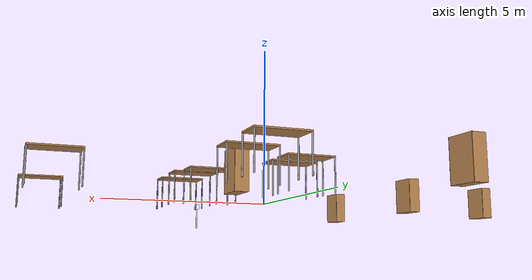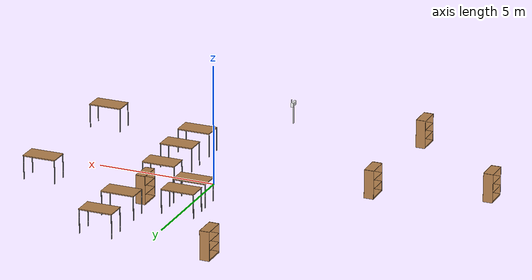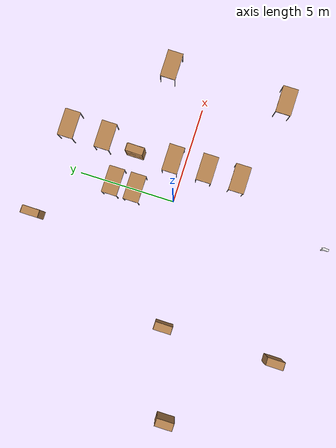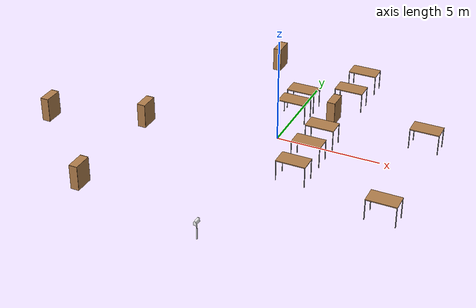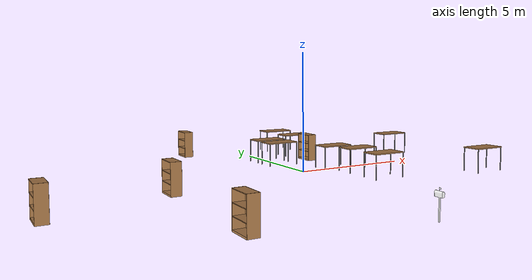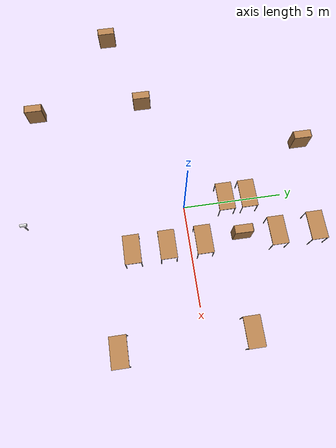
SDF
<?xml version='1.0'?>
<sdf version='1.6'>
  <model name='filled_pentagon'>
    <model name='Mailbox'>
      <link name='link'>
        <collision name='collision'>
          <geometry>
            <mesh>
              <uri>model://mailbox/meshes/mailbox.dae</uri>
            </mesh>
          </geometry>
        </collision>
        <visual name='visual'>
          <geometry>
            <mesh>
              <uri>model://mailbox/meshes/mailbox.dae</uri>
            </mesh>
          </geometry>
          <material>
            <script>
              <uri>model://mailbox/materials/scripts</uri>
              <uri>model://mailbox/materials/textures</uri>
              <name>Mailbox/Diffuse</name>
            </script>
          </material>
        </visual>
      </link>
      <pose frame=''>-0.061063 -8.05181 -0.319145 0 -0 0</pose>
    </model>
    <model name='bookshelf'>
      <static>1</static>
      <link name='link'>
        <inertial>
          <mass>1</mass>
        </inertial>
        <collision name='back'>
          <pose frame=''>0 0.005 0.6 0 -0 0</pose>
          <geometry>
            <box>
              <size>0.9 0.01 1.2</size>
            </box>
          </geometry>
        </collision>
        <visual name='visual1'>
          <pose frame=''>0 0.005 0.6 0 -0 0</pose>
          <geometry>
            <box>
              <size>0.9 0.01 1.2</size>
            </box>
          </geometry>
          <material>
            <script>
              <uri>file://media/materials/scripts/gazebo.material</uri>
              <name>Gazebo/Wood</name>
            </script>
          </material>
        </visual>
        <collision name='left_side'>
          <pose frame=''>0.45 -0.195 0.6 0 -0 0</pose>
          <geometry>
            <box>
              <size>0.02 0.4 1.2</size>
            </box>
          </geometry>
        </collision>
        <visual name='visual2'>
          <pose frame=''>0.45 -0.195 0.6 0 -0 0</pose>
          <geometry>
            <box>
              <size>0.02 0.4 1.2</size>
            </box>
          </geometry>
          <material>
            <script>
              <uri>file://media/materials/scripts/gazebo.material</uri>
              <name>Gazebo/Wood</name>
            </script>
          </material>
        </visual>
        <collision name='right_side'>
          <pose frame=''>-0.45 -0.195 0.6 0 -0 0</pose>
          <geometry>
            <box>
              <size>0.02 0.4 1.2</size>
            </box>
          </geometry>
        </collision>
        <visual name='visual3'>
          <pose frame=''>-0.45 -0.195 0.6 0 -0 0</pose>
          <geometry>
            <box>
              <size>0.02 0.4 1.2</size>
            </box>
          </geometry>
          <material>
            <script>
              <uri>file://media/materials/scripts/gazebo.material</uri>
              <name>Gazebo/Wood</name>
            </script>
          </material>
        </visual>
        <collision name='bottom'>
          <pose frame=''>0 -0.195 0.03 0 -0 0</pose>
          <geometry>
            <box>
              <size>0.88 0.4 0.06</size>
            </box>
          </geometry>
        </collision>
        <visual name='visual4'>
          <pose frame=''>0 -0.195 0.03 0 -0 0</pose>
          <geometry>
            <box>
              <size>0.88 0.4 0.06</size>
            </box>
          </geometry>
          <material>
            <script>
              <uri>file://media/materials/scripts/gazebo.material</uri>
              <name>Gazebo/Wood</name>
            </script>
          </material>
        </visual>
        <collision name='top'>
          <pose frame=''>0 -0.195 1.19 0 -0 0</pose>
          <geometry>
            <box>
              <size>0.88 0.4 0.02</size>
            </box>
          </geometry>
        </collision>
        <visual name='visual5'>
          <pose frame=''>0 -0.195 1.19 0 -0 0</pose>
          <geometry>
            <box>
              <size>0.88 0.4 0.02</size>
            </box>
          </geometry>
          <material>
            <script>
              <uri>file://media/materials/scripts/gazebo.material</uri>
              <name>Gazebo/Wood</name>
            </script>
          </material>
        </visual>
        <collision name='low_shelf'>
          <pose frame=''>0 -0.195 0.43 0 -0 0</pose>
          <geometry>
            <box>
              <size>0.88 0.4 0.02</size>
            </box>
          </geometry>
        </collision>
        <visual name='visual6'>
          <pose frame=''>0 -0.195 0.43 0 -0 0</pose>
          <geometry>
            <box>
              <size>0.88 0.4 0.02</size>
            </box>
          </geometry>
          <material>
            <script>
              <uri>file://media/materials/scripts/gazebo.material</uri>
              <name>Gazebo/Wood</name>
            </script>
          </material>
        </visual>
        <collision name='high_shelf'>
          <pose frame=''>0 -0.195 0.8 0 -0 0</pose>
          <geometry>
            <box>
              <size>0.88 0.4 0.02</size>
            </box>
          </geometry>
        </collision>
        <visual name='visual7'>
          <pose frame=''>0 -0.195 0.8 0 -0 0</pose>
          <geometry>
            <box>
              <size>0.88 0.4 0.02</size>
            </box>
          </geometry>
          <material>
            <script>
              <uri>file://media/materials/scripts/gazebo.material</uri>
              <name>Gazebo/Wood</name>
            </script>
          </material>
        </visual>
      </link>
      <pose frame=''>-6.00839 -7.18266 0.030886 0 0 -1.57756</pose>
    </model>
    <model name='bookshelf_clone'>
      <static>1</static>
      <link name='link'>
        <inertial>
          <mass>1</mass>
        </inertial>
        <collision name='back'>
          <pose frame=''>0 0.005 0.6 0 -0 0</pose>
          <geometry>
            <box>
              <size>0.9 0.01 1.2</size>
            </box>
          </geometry>
        </collision>
        <visual name='visual1'>
          <pose frame=''>0 0.005 0.6 0 -0 0</pose>
          <geometry>
            <box>
              <size>0.9 0.01 1.2</size>
            </box>
          </geometry>
          <material>
            <script>
              <uri>file://media/materials/scripts/gazebo.material</uri>
              <name>Gazebo/Wood</name>
            </script>
          </material>
        </visual>
        <collision name='left_side'>
          <pose frame=''>0.45 -0.195 0.6 0 -0 0</pose>
          <geometry>
            <box>
              <size>0.02 0.4 1.2</size>
            </box>
          </geometry>
        </collision>
        <visual name='visual2'>
          <pose frame=''>0.45 -0.195 0.6 0 -0 0</pose>
          <geometry>
            <box>
              <size>0.02 0.4 1.2</size>
            </box>
          </geometry>
          <material>
            <script>
              <uri>file://media/materials/scripts/gazebo.material</uri>
              <name>Gazebo/Wood</name>
            </script>
          </material>
        </visual>
        <collision name='right_side'>
          <pose frame=''>-0.45 -0.195 0.6 0 -0 0</pose>
          <geometry>
            <box>
              <size>0.02 0.4 1.2</size>
            </box>
          </geometry>
        </collision>
        <visual name='visual3'>
          <pose frame=''>-0.45 -0.195 0.6 0 -0 0</pose>
          <geometry>
            <box>
              <size>0.02 0.4 1.2</size>
            </box>
          </geometry>
          <material>
            <script>
              <uri>file://media/materials/scripts/gazebo.material</uri>
              <name>Gazebo/Wood</name>
            </script>
          </material>
        </visual>
        <collision name='bottom'>
          <pose frame=''>0 -0.195 0.03 0 -0 0</pose>
          <geometry>
            <box>
              <size>0.88 0.4 0.06</size>
            </box>
          </geometry>
        </collision>
        <visual name='visual4'>
          <pose frame=''>0 -0.195 0.03 0 -0 0</pose>
          <geometry>
            <box>
              <size>0.88 0.4 0.06</size>
            </box>
          </geometry>
          <material>
            <script>
              <uri>file://media/materials/scripts/gazebo.material</uri>
              <name>Gazebo/Wood</name>
            </script>
          </material>
        </visual>
        <collision name='top'>
          <pose frame=''>0 -0.195 1.19 0 -0 0</pose>
          <geometry>
            <box>
              <size>0.88 0.4 0.02</size>
            </box>
          </geometry>
        </collision>
        <visual name='visual5'>
          <pose frame=''>0 -0.195 1.19 0 -0 0</pose>
          <geometry>
            <box>
              <size>0.88 0.4 0.02</size>
            </box>
          </geometry>
          <material>
            <script>
              <uri>file://media/materials/scripts/gazebo.material</uri>
              <name>Gazebo/Wood</name>
            </script>
          </material>
        </visual>
        <collision name='low_shelf'>
          <pose frame=''>0 -0.195 0.43 0 -0 0</pose>
          <geometry>
            <box>
              <size>0.88 0.4 0.02</size>
            </box>
          </geometry>
        </collision>
        <visual name='visual6'>
          <pose frame=''>0 -0.195 0.43 0 -0 0</pose>
          <geometry>
            <box>
              <size>0.88 0.4 0.02</size>
            </box>
          </geometry>
          <material>
            <script>
              <uri>file://media/materials/scripts/gazebo.material</uri>
              <name>Gazebo/Wood</name>
            </script>
          </material>
        </visual>
        <collision name='high_shelf'>
          <pose frame=''>0 -0.195 0.8 0 -0 0</pose>
          <geometry>
            <box>
              <size>0.88 0.4 0.02</size>
            </box>
          </geometry>
        </collision>
        <visual name='visual7'>
          <pose frame=''>0 -0.195 0.8 0 -0 0</pose>
          <geometry>
            <box>
              <size>0.88 0.4 0.02</size>
            </box>
          </geometry>
          <material>
            <script>
              <uri>file://media/materials/scripts/gazebo.material</uri>
              <name>Gazebo/Wood</name>
            </script>
          </material>
        </visual>
      </link>
      <pose frame=''>-6.005 -1.42054 0.030886 0 0 -1.57756</pose>
    </model>
    <model name='bookshelf_clone_0'>
      <static>1</static>
      <link name='link'>
        <inertial>
          <mass>1</mass>
        </inertial>
        <collision name='back'>
          <pose frame=''>0 0.005 0.6 0 -0 0</pose>
          <geometry>
            <box>
              <size>0.9 0.01 1.2</size>
            </box>
          </geometry>
        </collision>
        <visual name='visual1'>
          <pose frame=''>0 0.005 0.6 0 -0 0</pose>
          <geometry>
            <box>
              <size>0.9 0.01 1.2</size>
            </box>
          </geometry>
          <material>
            <script>
              <uri>file://media/materials/scripts/gazebo.material</uri>
              <name>Gazebo/Wood</name>
            </script>
          </material>
        </visual>
        <collision name='left_side'>
          <pose frame=''>0.45 -0.195 0.6 0 -0 0</pose>
          <geometry>
            <box>
              <size>0.02 0.4 1.2</size>
            </box>
          </geometry>
        </collision>
        <visual name='visual2'>
          <pose frame=''>0.45 -0.195 0.6 0 -0 0</pose>
          <geometry>
            <box>
              <size>0.02 0.4 1.2</size>
            </box>
          </geometry>
          <material>
            <script>
              <uri>file://media/materials/scripts/gazebo.material</uri>
              <name>Gazebo/Wood</name>
            </script>
          </material>
        </visual>
        <collision name='right_side'>
          <pose frame=''>-0.45 -0.195 0.6 0 -0 0</pose>
          <geometry>
            <box>
              <size>0.02 0.4 1.2</size>
            </box>
          </geometry>
        </collision>
        <visual name='visual3'>
          <pose frame=''>-0.45 -0.195 0.6 0 -0 0</pose>
          <geometry>
            <box>
              <size>0.02 0.4 1.2</size>
            </box>
          </geometry>
          <material>
            <script>
              <uri>file://media/materials/scripts/gazebo.material</uri>
              <name>Gazebo/Wood</name>
            </script>
          </material>
        </visual>
        <collision name='bottom'>
          <pose frame=''>0 -0.195 0.03 0 -0 0</pose>
          <geometry>
            <box>
              <size>0.88 0.4 0.06</size>
            </box>
          </geometry>
        </collision>
        <visual name='visual4'>
          <pose frame=''>0 -0.195 0.03 0 -0 0</pose>
          <geometry>
            <box>
              <size>0.88 0.4 0.06</size>
            </box>
          </geometry>
          <material>
            <script>
              <uri>file://media/materials/scripts/gazebo.material</uri>
              <name>Gazebo/Wood</name>
            </script>
          </material>
        </visual>
        <collision name='top'>
          <pose frame=''>0 -0.195 1.19 0 -0 0</pose>
          <geometry>
            <box>
              <size>0.88 0.4 0.02</size>
            </box>
          </geometry>
        </collision>
        <visual name='visual5'>
          <pose frame=''>0 -0.195 1.19 0 -0 0</pose>
          <geometry>
            <box>
              <size>0.88 0.4 0.02</size>
            </box>
          </geometry>
          <material>
            <script>
              <uri>file://media/materials/scripts/gazebo.material</uri>
              <name>Gazebo/Wood</name>
            </script>
          </material>
        </visual>
        <collision name='low_shelf'>
          <pose frame=''>0 -0.195 0.43 0 -0 0</pose>
          <geometry>
            <box>
              <size>0.88 0.4 0.02</size>
            </box>
          </geometry>
        </collision>
        <visual name='visual6'>
          <pose frame=''>0 -0.195 0.43 0 -0 0</pose>
          <geometry>
            <box>
              <size>0.88 0.4 0.02</size>
            </box>
          </geometry>
          <material>
            <script>
              <uri>file://media/materials/scripts/gazebo.material</uri>
              <name>Gazebo/Wood</name>
            </script>
          </material>
        </visual>
        <collision name='high_shelf'>
          <pose frame=''>0 -0.195 0.8 0 -0 0</pose>
          <geometry>
            <box>
              <size>0.88 0.4 0.02</size>
            </box>
          </geometry>
        </collision>
        <visual name='visual7'>
          <pose frame=''>0 -0.195 0.8 0 -0 0</pose>
          <geometry>
            <box>
              <size>0.88 0.4 0.02</size>
            </box>
          </geometry>
          <material>
            <script>
              <uri>file://media/materials/scripts/gazebo.material</uri>
              <name>Gazebo/Wood</name>
            </script>
          </material>
        </visual>
      </link>
      <pose frame=''>1.995 2.57946 0.030886 0 0 -1.57756</pose>
    </model>
    <model name='bookshelf_clone_1'>
      <static>1</static>
      <link name='link'>
        <inertial>
          <mass>1</mass>
        </inertial>
        <collision name='back'>
          <pose frame=''>0 0.005 0.6 0 -0 0</pose>
          <geometry>
            <box>
              <size>0.9 0.01 1.2</size>
            </box>
          </geometry>
        </collision>
        <visual name='visual1'>
          <pose frame=''>0 0.005 0.6 0 -0 0</pose>
          <geometry>
            <box>
              <size>0.9 0.01 1.2</size>
            </box>
          </geometry>
          <material>
            <script>
              <uri>file://media/materials/scripts/gazebo.material</uri>
              <name>Gazebo/Wood</name>
            </script>
          </material>
        </visual>
        <collision name='left_side'>
          <pose frame=''>0.45 -0.195 0.6 0 -0 0</pose>
          <geometry>
            <box>
              <size>0.02 0.4 1.2</size>
            </box>
          </geometry>
        </collision>
        <visual name='visual2'>
          <pose frame=''>0.45 -0.195 0.6 0 -0 0</pose>
          <geometry>
            <box>
              <size>0.02 0.4 1.2</size>
            </box>
          </geometry>
          <material>
            <script>
              <uri>file://media/materials/scripts/gazebo.material</uri>
              <name>Gazebo/Wood</name>
            </script>
          </material>
        </visual>
        <collision name='right_side'>
          <pose frame=''>-0.45 -0.195 0.6 0 -0 0</pose>
          <geometry>
            <box>
              <size>0.02 0.4 1.2</size>
            </box>
          </geometry>
        </collision>
        <visual name='visual3'>
          <pose frame=''>-0.45 -0.195 0.6 0 -0 0</pose>
          <geometry>
            <box>
              <size>0.02 0.4 1.2</size>
            </box>
          </geometry>
          <material>
            <script>
              <uri>file://media/materials/scripts/gazebo.material</uri>
              <name>Gazebo/Wood</name>
            </script>
          </material>
        </visual>
        <collision name='bottom'>
          <pose frame=''>0 -0.195 0.03 0 -0 0</pose>
          <geometry>
            <box>
              <size>0.88 0.4 0.06</size>
            </box>
          </geometry>
        </collision>
        <visual name='visual4'>
          <pose frame=''>0 -0.195 0.03 0 -0 0</pose>
          <geometry>
            <box>
              <size>0.88 0.4 0.06</size>
            </box>
          </geometry>
          <material>
            <script>
              <uri>file://media/materials/scripts/gazebo.material</uri>
              <name>Gazebo/Wood</name>
            </script>
          </material>
        </visual>
        <collision name='top'>
          <pose frame=''>0 -0.195 1.19 0 -0 0</pose>
          <geometry>
            <box>
              <size>0.88 0.4 0.02</size>
            </box>
          </geometry>
        </collision>
        <visual name='visual5'>
          <pose frame=''>0 -0.195 1.19 0 -0 0</pose>
          <geometry>
            <box>
              <size>0.88 0.4 0.02</size>
            </box>
          </geometry>
          <material>
            <script>
              <uri>file://media/materials/scripts/gazebo.material</uri>
              <name>Gazebo/Wood</name>
            </script>
          </material>
        </visual>
        <collision name='low_shelf'>
          <pose frame=''>0 -0.195 0.43 0 -0 0</pose>
          <geometry>
            <box>
              <size>0.88 0.4 0.02</size>
            </box>
          </geometry>
        </collision>
        <visual name='visual6'>
          <pose frame=''>0 -0.195 0.43 0 -0 0</pose>
          <geometry>
            <box>
              <size>0.88 0.4 0.02</size>
            </box>
          </geometry>
          <material>
            <script>
              <uri>file://media/materials/scripts/gazebo.material</uri>
              <name>Gazebo/Wood</name>
            </script>
          </material>
        </visual>
        <collision name='high_shelf'>
          <pose frame=''>0 -0.195 0.8 0 -0 0</pose>
          <geometry>
            <box>
              <size>0.88 0.4 0.02</size>
            </box>
          </geometry>
        </collision>
        <visual name='visual7'>
          <pose frame=''>0 -0.195 0.8 0 -0 0</pose>
          <geometry>
            <box>
              <size>0.88 0.4 0.02</size>
            </box>
          </geometry>
          <material>
            <script>
              <uri>file://media/materials/scripts/gazebo.material</uri>
              <name>Gazebo/Wood</name>
            </script>
          </material>
        </visual>
      </link>
      <pose frame=''>-2.51113 6.57946 0.030886 0 0 -1.57756</pose>
    </model>
    <model name='bookshelf_clone_2'>
      <static>1</static>
      <link name='link'>
        <inertial>
          <mass>1</mass>
        </inertial>
        <collision name='back'>
          <pose frame=''>0 0.005 0.6 0 -0 0</pose>
          <geometry>
            <box>
              <size>0.9 0.01 1.2</size>
            </box>
          </geometry>
        </collision>
        <visual name='visual1'>
          <pose frame=''>0 0.005 0.6 0 -0 0</pose>
          <geometry>
            <box>
              <size>0.9 0.01 1.2</size>
            </box>
          </geometry>
          <material>
            <script>
              <uri>file://media/materials/scripts/gazebo.material</uri>
              <name>Gazebo/Wood</name>
            </script>
          </material>
        </visual>
        <collision name='left_side'>
          <pose frame=''>0.45 -0.195 0.6 0 -0 0</pose>
          <geometry>
            <box>
              <size>0.02 0.4 1.2</size>
            </box>
          </geometry>
        </collision>
        <visual name='visual2'>
          <pose frame=''>0.45 -0.195 0.6 0 -0 0</pose>
          <geometry>
            <box>
              <size>0.02 0.4 1.2</size>
            </box>
          </geometry>
          <material>
            <script>
              <uri>file://media/materials/scripts/gazebo.material</uri>
              <name>Gazebo/Wood</name>
            </script>
          </material>
        </visual>
        <collision name='right_side'>
          <pose frame=''>-0.45 -0.195 0.6 0 -0 0</pose>
          <geometry>
            <box>
              <size>0.02 0.4 1.2</size>
            </box>
          </geometry>
        </collision>
        <visual name='visual3'>
          <pose frame=''>-0.45 -0.195 0.6 0 -0 0</pose>
          <geometry>
            <box>
              <size>0.02 0.4 1.2</size>
            </box>
          </geometry>
          <material>
            <script>
              <uri>file://media/materials/scripts/gazebo.material</uri>
              <name>Gazebo/Wood</name>
            </script>
          </material>
        </visual>
        <collision name='bottom'>
          <pose frame=''>0 -0.195 0.03 0 -0 0</pose>
          <geometry>
            <box>
              <size>0.88 0.4 0.06</size>
            </box>
          </geometry>
        </collision>
        <visual name='visual4'>
          <pose frame=''>0 -0.195 0.03 0 -0 0</pose>
          <geometry>
            <box>
              <size>0.88 0.4 0.06</size>
            </box>
          </geometry>
          <material>
            <script>
              <uri>file://media/materials/scripts/gazebo.material</uri>
              <name>Gazebo/Wood</name>
            </script>
          </material>
        </visual>
        <collision name='top'>
          <pose frame=''>0 -0.195 1.19 0 -0 0</pose>
          <geometry>
            <box>
              <size>0.88 0.4 0.02</size>
            </box>
          </geometry>
        </collision>
        <visual name='visual5'>
          <pose frame=''>0 -0.195 1.19 0 -0 0</pose>
          <geometry>
            <box>
              <size>0.88 0.4 0.02</size>
            </box>
          </geometry>
          <material>
            <script>
              <uri>file://media/materials/scripts/gazebo.material</uri>
              <name>Gazebo/Wood</name>
            </script>
          </material>
        </visual>
        <collision name='low_shelf'>
          <pose frame=''>0 -0.195 0.43 0 -0 0</pose>
          <geometry>
            <box>
              <size>0.88 0.4 0.02</size>
            </box>
          </geometry>
        </collision>
        <visual name='visual6'>
          <pose frame=''>0 -0.195 0.43 0 -0 0</pose>
          <geometry>
            <box>
              <size>0.88 0.4 0.02</size>
            </box>
          </geometry>
          <material>
            <script>
              <uri>file://media/materials/scripts/gazebo.material</uri>
              <name>Gazebo/Wood</name>
            </script>
          </material>
        </visual>
        <collision name='high_shelf'>
          <pose frame=''>0 -0.195 0.8 0 -0 0</pose>
          <geometry>
            <box>
              <size>0.88 0.4 0.02</size>
            </box>
          </geometry>
        </collision>
        <visual name='visual7'>
          <pose frame=''>0 -0.195 0.8 0 -0 0</pose>
          <geometry>
            <box>
              <size>0.88 0.4 0.02</size>
            </box>
          </geometry>
          <material>
            <script>
              <uri>file://media/materials/scripts/gazebo.material</uri>
              <name>Gazebo/Wood</name>
            </script>
          </material>
        </visual>
      </link>
      <pose frame=''>-10.4247 -2.89162 0.030886 0 0 -1.57756</pose>
    </model>
    <model name='table'>
      <static>0</static>
      <link name='link'>
        <collision name='surface'>
          <pose frame=''>0 0 1 0 -0 0</pose>
          <geometry>
            <box>
              <size>1.5 0.8 0.03</size>
            </box>
          </geometry>
          <surface>
            <friction>
              <ode>
                <mu>0.6</mu>
                <mu2>0.6</mu2>
              </ode>
            </friction>
          </surface>
        </collision>
        <visual name='visual1'>
          <pose frame=''>0 0 1 0 -0 0</pose>
          <geometry>
            <box>
              <size>1.4 0.8 0.04</size>
            </box>
          </geometry>
          <material>
            <script>
              <uri>file://media/materials/scripts/gazebo.material</uri>
              <name>Gazebo/Wood</name>
            </script>
          </material>
        </visual>
        <collision name='front_left_leg'>
          <pose frame=''>0.68 0.38 0.5 0 -0 0</pose>
          <geometry>
            <cylinder>
              <radius>0.02</radius>
              <length>1</length>
            </cylinder>
          </geometry>
        </collision>
        <visual name='front_left_leg'>
          <pose frame=''>0.68 0.38 0.5 0 -0 0</pose>
          <geometry>
            <cylinder>
              <radius>0.02</radius>
              <length>1</length>
            </cylinder>
          </geometry>
          <material>
            <script>
              <uri>file://media/materials/scripts/gazebo.material</uri>
              <name>Gazebo/Grey</name>
            </script>
          </material>
        </visual>
        <collision name='front_right_leg'>
          <pose frame=''>0.68 -0.38 0.5 0 -0 0</pose>
          <geometry>
            <cylinder>
              <radius>0.02</radius>
              <length>1</length>
            </cylinder>
          </geometry>
        </collision>
        <visual name='front_right_leg'>
          <pose frame=''>0.68 -0.38 0.5 0 -0 0</pose>
          <geometry>
            <cylinder>
              <radius>0.02</radius>
              <length>1</length>
            </cylinder>
          </geometry>
          <material>
            <script>
              <uri>file://media/materials/scripts/gazebo.material</uri>
              <name>Gazebo/Grey</name>
            </script>
          </material>
        </visual>
        <collision name='back_right_leg'>
          <pose frame=''>-0.68 -0.38 0.5 0 -0 0</pose>
          <geometry>
            <cylinder>
              <radius>0.02</radius>
              <length>1</length>
            </cylinder>
          </geometry>
        </collision>
        <visual name='back_right_leg'>
          <pose frame=''>-0.68 -0.38 0.5 0 -0 0</pose>
          <geometry>
            <cylinder>
              <radius>0.02</radius>
              <length>1</length>
            </cylinder>
          </geometry>
          <material>
            <script>
              <uri>file://media/materials/scripts/gazebo.material</uri>
              <name>Gazebo/Grey</name>
            </script>
          </material>
        </visual>
        <collision name='back_left_leg'>
          <pose frame=''>-0.68 0.38 0.5 0 -0 0</pose>
          <geometry>
            <cylinder>
              <radius>0.02</radius>
              <length>1</length>
            </cylinder>
          </geometry>
        </collision>
        <visual name='back_left_leg'>
          <pose frame=''>-0.68 0.38 0.5 0 -0 0</pose>
          <geometry>
            <cylinder>
              <radius>0.02</radius>
              <length>1</length>
            </cylinder>
          </geometry>
          <material>
            <script>
              <uri>file://media/materials/scripts/gazebo.material</uri>
              <name>Gazebo/Grey</name>
            </script>
          </material>
        </visual>
      </link>
      <pose frame=''>1.995 -2.85373 0.030886 0 -0 0</pose>
    </model>
    <model name='table_0'>
      <static>0</static>
      <link name='link'>
        <collision name='surface'>
          <pose frame=''>0 0 1 0 -0 0</pose>
          <geometry>
            <box>
              <size>1.5 0.8 0.03</size>
            </box>
          </geometry>
          <surface>
            <friction>
              <ode>
                <mu>0.6</mu>
                <mu2>0.6</mu2>
              </ode>
            </friction>
          </surface>
        </collision>
        <visual name='visual1'>
          <pose frame=''>0 0 1 0 -0 0</pose>
          <geometry>
            <box>
              <size>1.4 0.8 0.04</size>
            </box>
          </geometry>
          <material>
            <script>
              <uri>file://media/materials/scripts/gazebo.material</uri>
              <name>Gazebo/Wood</name>
            </script>
          </material>
        </visual>
        <collision name='front_left_leg'>
          <pose frame=''>0.68 0.38 0.5 0 -0 0</pose>
          <geometry>
            <cylinder>
              <radius>0.02</radius>
              <length>1</length>
            </cylinder>
          </geometry>
        </collision>
        <visual name='front_left_leg'>
          <pose frame=''>0.68 0.38 0.5 0 -0 0</pose>
          <geometry>
            <cylinder>
              <radius>0.02</radius>
              <length>1</length>
            </cylinder>
          </geometry>
          <material>
            <script>
              <uri>file://media/materials/scripts/gazebo.material</uri>
              <name>Gazebo/Grey</name>
            </script>
          </material>
        </visual>
        <collision name='front_right_leg'>
          <pose frame=''>0.68 -0.38 0.5 0 -0 0</pose>
          <geometry>
            <cylinder>
              <radius>0.02</radius>
              <length>1</length>
            </cylinder>
          </geometry>
        </collision>
        <visual name='front_right_leg'>
          <pose frame=''>0.68 -0.38 0.5 0 -0 0</pose>
          <geometry>
            <cylinder>
              <radius>0.02</radius>
              <length>1</length>
            </cylinder>
          </geometry>
          <material>
            <script>
              <uri>file://media/materials/scripts/gazebo.material</uri>
              <name>Gazebo/Grey</name>
            </script>
          </material>
        </visual>
        <collision name='back_right_leg'>
          <pose frame=''>-0.68 -0.38 0.5 0 -0 0</pose>
          <geometry>
            <cylinder>
              <radius>0.02</radius>
              <length>1</length>
            </cylinder>
          </geometry>
        </collision>
        <visual name='back_right_leg'>
          <pose frame=''>-0.68 -0.38 0.5 0 -0 0</pose>
          <geometry>
            <cylinder>
              <radius>0.02</radius>
              <length>1</length>
            </cylinder>
          </geometry>
          <material>
            <script>
              <uri>file://media/materials/scripts/gazebo.material</uri>
              <name>Gazebo/Grey</name>
            </script>
          </material>
        </visual>
        <collision name='back_left_leg'>
          <pose frame=''>-0.68 0.38 0.5 0 -0 0</pose>
          <geometry>
            <cylinder>
              <radius>0.02</radius>
              <length>1</length>
            </cylinder>
          </geometry>
        </collision>
        <visual name='back_left_leg'>
          <pose frame=''>-0.68 0.38 0.5 0 -0 0</pose>
          <geometry>
            <cylinder>
              <radius>0.02</radius>
              <length>1</length>
            </cylinder>
          </geometry>
          <material>
            <script>
              <uri>file://media/materials/scripts/gazebo.material</uri>
              <name>Gazebo/Grey</name>
            </script>
          </material>
        </visual>
      </link>
      <pose frame=''>-0.005005 3.1594 0.030886 0 -0 0</pose>
    </model>
    <model name='table_1'>
      <static>0</static>
      <link name='link'>
        <collision name='surface'>
          <pose frame=''>0 0 1 0 -0 0</pose>
          <geometry>
            <box>
              <size>1.5 0.8 0.03</size>
            </box>
          </geometry>
          <surface>
            <friction>
              <ode>
                <mu>0.6</mu>
                <mu2>0.6</mu2>
              </ode>
            </friction>
          </surface>
        </collision>
        <visual name='visual1'>
          <pose frame=''>0 0 1 0 -0 0</pose>
          <geometry>
            <box>
              <size>1.4 0.8 0.04</size>
            </box>
          </geometry>
          <material>
            <script>
              <uri>file://media/materials/scripts/gazebo.material</uri>
              <name>Gazebo/Wood</name>
            </script>
          </material>
        </visual>
        <collision name='front_left_leg'>
          <pose frame=''>0.68 0.38 0.5 0 -0 0</pose>
          <geometry>
            <cylinder>
              <radius>0.02</radius>
              <length>1</length>
            </cylinder>
          </geometry>
        </collision>
        <visual name='front_left_leg'>
          <pose frame=''>0.68 0.38 0.5 0 -0 0</pose>
          <geometry>
            <cylinder>
              <radius>0.02</radius>
              <length>1</length>
            </cylinder>
          </geometry>
          <material>
            <script>
              <uri>file://media/materials/scripts/gazebo.material</uri>
              <name>Gazebo/Grey</name>
            </script>
          </material>
        </visual>
        <collision name='front_right_leg'>
          <pose frame=''>0.68 -0.38 0.5 0 -0 0</pose>
          <geometry>
            <cylinder>
              <radius>0.02</radius>
              <length>1</length>
            </cylinder>
          </geometry>
        </collision>
        <visual name='front_right_leg'>
          <pose frame=''>0.68 -0.38 0.5 0 -0 0</pose>
          <geometry>
            <cylinder>
              <radius>0.02</radius>
              <length>1</length>
            </cylinder>
          </geometry>
          <material>
            <script>
              <uri>file://media/materials/scripts/gazebo.material</uri>
              <name>Gazebo/Grey</name>
            </script>
          </material>
        </visual>
        <collision name='back_right_leg'>
          <pose frame=''>-0.68 -0.38 0.5 0 -0 0</pose>
          <geometry>
            <cylinder>
              <radius>0.02</radius>
              <length>1</length>
            </cylinder>
          </geometry>
        </collision>
        <visual name='back_right_leg'>
          <pose frame=''>-0.68 -0.38 0.5 0 -0 0</pose>
          <geometry>
            <cylinder>
              <radius>0.02</radius>
              <length>1</length>
            </cylinder>
          </geometry>
          <material>
            <script>
              <uri>file://media/materials/scripts/gazebo.material</uri>
              <name>Gazebo/Grey</name>
            </script>
          </material>
        </visual>
        <collision name='back_left_leg'>
          <pose frame=''>-0.68 0.38 0.5 0 -0 0</pose>
          <geometry>
            <cylinder>
              <radius>0.02</radius>
              <length>1</length>
            </cylinder>
          </geometry>
        </collision>
        <visual name='back_left_leg'>
          <pose frame=''>-0.68 0.38 0.5 0 -0 0</pose>
          <geometry>
            <cylinder>
              <radius>0.02</radius>
              <length>1</length>
            </cylinder>
          </geometry>
          <material>
            <script>
              <uri>file://media/materials/scripts/gazebo.material</uri>
              <name>Gazebo/Grey</name>
            </script>
          </material>
        </visual>
      </link>
      <pose frame=''>-0.005005 2.02952 0.030886 0 -0 0</pose>
    </model>
    <model name='table_1_clone'>
      <static>0</static>
      <link name='link'>
        <collision name='surface'>
          <pose frame=''>0 0 1 0 -0 0</pose>
          <geometry>
            <box>
              <size>1.5 0.8 0.03</size>
            </box>
          </geometry>
          <surface>
            <friction>
              <ode>
                <mu>0.6</mu>
                <mu2>0.6</mu2>
              </ode>
            </friction>
          </surface>
        </collision>
        <visual name='visual1'>
          <pose frame=''>0 0 1 0 -0 0</pose>
          <geometry>
            <box>
              <size>1.4 0.8 0.04</size>
            </box>
          </geometry>
          <material>
            <script>
              <uri>file://media/materials/scripts/gazebo.material</uri>
              <name>Gazebo/Wood</name>
            </script>
          </material>
        </visual>
        <collision name='front_left_leg'>
          <pose frame=''>0.68 0.38 0.5 0 -0 0</pose>
          <geometry>
            <cylinder>
              <radius>0.02</radius>
              <length>1</length>
            </cylinder>
          </geometry>
        </collision>
        <visual name='front_left_leg'>
          <pose frame=''>0.68 0.38 0.5 0 -0 0</pose>
          <geometry>
            <cylinder>
              <radius>0.02</radius>
              <length>1</length>
            </cylinder>
          </geometry>
          <material>
            <script>
              <uri>file://media/materials/scripts/gazebo.material</uri>
              <name>Gazebo/Grey</name>
            </script>
          </material>
        </visual>
        <collision name='front_right_leg'>
          <pose frame=''>0.68 -0.38 0.5 0 -0 0</pose>
          <geometry>
            <cylinder>
              <radius>0.02</radius>
              <length>1</length>
            </cylinder>
          </geometry>
        </collision>
        <visual name='front_right_leg'>
          <pose frame=''>0.68 -0.38 0.5 0 -0 0</pose>
          <geometry>
            <cylinder>
              <radius>0.02</radius>
              <length>1</length>
            </cylinder>
          </geometry>
          <material>
            <script>
              <uri>file://media/materials/scripts/gazebo.material</uri>
              <name>Gazebo/Grey</name>
            </script>
          </material>
        </visual>
        <collision name='back_right_leg'>
          <pose frame=''>-0.68 -0.38 0.5 0 -0 0</pose>
          <geometry>
            <cylinder>
              <radius>0.02</radius>
              <length>1</length>
            </cylinder>
          </geometry>
        </collision>
        <visual name='back_right_leg'>
          <pose frame=''>-0.68 -0.38 0.5 0 -0 0</pose>
          <geometry>
            <cylinder>
              <radius>0.02</radius>
              <length>1</length>
            </cylinder>
          </geometry>
          <material>
            <script>
              <uri>file://media/materials/scripts/gazebo.material</uri>
              <name>Gazebo/Grey</name>
            </script>
          </material>
        </visual>
        <collision name='back_left_leg'>
          <pose frame=''>-0.68 0.38 0.5 0 -0 0</pose>
          <geometry>
            <cylinder>
              <radius>0.02</radius>
              <length>1</length>
            </cylinder>
          </geometry>
        </collision>
        <visual name='back_left_leg'>
          <pose frame=''>-0.68 0.38 0.5 0 -0 0</pose>
          <geometry>
            <cylinder>
              <radius>0.02</radius>
              <length>1</length>
            </cylinder>
          </geometry>
          <material>
            <script>
              <uri>file://media/materials/scripts/gazebo.material</uri>
              <name>Gazebo/Grey</name>
            </script>
          </material>
        </visual>
      </link>
      <pose frame=''>6.46931 -3.94083 0.030886 0 -0 0</pose>
    </model>
    <model name='table_1_clone_clone'>
      <static>0</static>
      <link name='link'>
        <collision name='surface'>
          <pose frame=''>0 0 1 0 -0 0</pose>
          <geometry>
            <box>
              <size>1.5 0.8 0.03</size>
            </box>
          </geometry>
          <surface>
            <friction>
              <ode>
                <mu>0.6</mu>
                <mu2>0.6</mu2>
              </ode>
            </friction>
          </surface>
        </collision>
        <visual name='visual1'>
          <pose frame=''>0 0 1 0 -0 0</pose>
          <geometry>
            <box>
              <size>1.4 0.8 0.04</size>
            </box>
          </geometry>
          <material>
            <script>
              <uri>file://media/materials/scripts/gazebo.material</uri>
              <name>Gazebo/Wood</name>
            </script>
          </material>
        </visual>
        <collision name='front_left_leg'>
          <pose frame=''>0.68 0.38 0.5 0 -0 0</pose>
          <geometry>
            <cylinder>
              <radius>0.02</radius>
              <length>1</length>
            </cylinder>
          </geometry>
        </collision>
        <visual name='front_left_leg'>
          <pose frame=''>0.68 0.38 0.5 0 -0 0</pose>
          <geometry>
            <cylinder>
              <radius>0.02</radius>
              <length>1</length>
            </cylinder>
          </geometry>
          <material>
            <script>
              <uri>file://media/materials/scripts/gazebo.material</uri>
              <name>Gazebo/Grey</name>
            </script>
          </material>
        </visual>
        <collision name='front_right_leg'>
          <pose frame=''>0.68 -0.38 0.5 0 -0 0</pose>
          <geometry>
            <cylinder>
              <radius>0.02</radius>
              <length>1</length>
            </cylinder>
          </geometry>
        </collision>
        <visual name='front_right_leg'>
          <pose frame=''>0.68 -0.38 0.5 0 -0 0</pose>
          <geometry>
            <cylinder>
              <radius>0.02</radius>
              <length>1</length>
            </cylinder>
          </geometry>
          <material>
            <script>
              <uri>file://media/materials/scripts/gazebo.material</uri>
              <name>Gazebo/Grey</name>
            </script>
          </material>
        </visual>
        <collision name='back_right_leg'>
          <pose frame=''>-0.68 -0.38 0.5 0 -0 0</pose>
          <geometry>
            <cylinder>
              <radius>0.02</radius>
              <length>1</length>
            </cylinder>
          </geometry>
        </collision>
        <visual name='back_right_leg'>
          <pose frame=''>-0.68 -0.38 0.5 0 -0 0</pose>
          <geometry>
            <cylinder>
              <radius>0.02</radius>
              <length>1</length>
            </cylinder>
          </geometry>
          <material>
            <script>
              <uri>file://media/materials/scripts/gazebo.material</uri>
              <name>Gazebo/Grey</name>
            </script>
          </material>
        </visual>
        <collision name='back_left_leg'>
          <pose frame=''>-0.68 0.38 0.5 0 -0 0</pose>
          <geometry>
            <cylinder>
              <radius>0.02</radius>
              <length>1</length>
            </cylinder>
          </geometry>
        </collision>
        <visual name='back_left_leg'>
          <pose frame=''>-0.68 0.38 0.5 0 -0 0</pose>
          <geometry>
            <cylinder>
              <radius>0.02</radius>
              <length>1</length>
            </cylinder>
          </geometry>
          <material>
            <script>
              <uri>file://media/materials/scripts/gazebo.material</uri>
              <name>Gazebo/Grey</name>
            </script>
          </material>
        </visual>
      </link>
      <pose frame=''>6.47139 2.13617 0.030886 0 -0 0</pose>
    </model>
    <model name='table_1_clone_clone_clone'>
      <static>0</static>
      <link name='link'>
        <collision name='surface'>
          <pose frame=''>0 0 1 0 -0 0</pose>
          <geometry>
            <box>
              <size>1.5 0.8 0.03</size>
            </box>
          </geometry>
          <surface>
            <friction>
              <ode>
                <mu>0.6</mu>
                <mu2>0.6</mu2>
              </ode>
            </friction>
          </surface>
        </collision>
        <visual name='visual1'>
          <pose frame=''>0 0 1 0 -0 0</pose>
          <geometry>
            <box>
              <size>1.4 0.8 0.04</size>
            </box>
          </geometry>
          <material>
            <script>
              <uri>file://media/materials/scripts/gazebo.material</uri>
              <name>Gazebo/Wood</name>
            </script>
          </material>
        </visual>
        <collision name='front_left_leg'>
          <pose frame=''>0.68 0.38 0.5 0 -0 0</pose>
          <geometry>
            <cylinder>
              <radius>0.02</radius>
              <length>1</length>
            </cylinder>
          </geometry>
        </collision>
        <visual name='front_left_leg'>
          <pose frame=''>0.68 0.38 0.5 0 -0 0</pose>
          <geometry>
            <cylinder>
              <radius>0.02</radius>
              <length>1</length>
            </cylinder>
          </geometry>
          <material>
            <script>
              <uri>file://media/materials/scripts/gazebo.material</uri>
              <name>Gazebo/Grey</name>
            </script>
          </material>
        </visual>
        <collision name='front_right_leg'>
          <pose frame=''>0.68 -0.38 0.5 0 -0 0</pose>
          <geometry>
            <cylinder>
              <radius>0.02</radius>
              <length>1</length>
            </cylinder>
          </geometry>
        </collision>
        <visual name='front_right_leg'>
          <pose frame=''>0.68 -0.38 0.5 0 -0 0</pose>
          <geometry>
            <cylinder>
              <radius>0.02</radius>
              <length>1</length>
            </cylinder>
          </geometry>
          <material>
            <script>
              <uri>file://media/materials/scripts/gazebo.material</uri>
              <name>Gazebo/Grey</name>
            </script>
          </material>
        </visual>
        <collision name='back_right_leg'>
          <pose frame=''>-0.68 -0.38 0.5 0 -0 0</pose>
          <geometry>
            <cylinder>
              <radius>0.02</radius>
              <length>1</length>
            </cylinder>
          </geometry>
        </collision>
        <visual name='back_right_leg'>
          <pose frame=''>-0.68 -0.38 0.5 0 -0 0</pose>
          <geometry>
            <cylinder>
              <radius>0.02</radius>
              <length>1</length>
            </cylinder>
          </geometry>
          <material>
            <script>
              <uri>file://media/materials/scripts/gazebo.material</uri>
              <name>Gazebo/Grey</name>
            </script>
          </material>
        </visual>
        <collision name='back_left_leg'>
          <pose frame=''>-0.68 0.38 0.5 0 -0 0</pose>
          <geometry>
            <cylinder>
              <radius>0.02</radius>
              <length>1</length>
            </cylinder>
          </geometry>
        </collision>
        <visual name='back_left_leg'>
          <pose frame=''>-0.68 0.38 0.5 0 -0 0</pose>
          <geometry>
            <cylinder>
              <radius>0.02</radius>
              <length>1</length>
            </cylinder>
          </geometry>
          <material>
            <script>
              <uri>file://media/materials/scripts/gazebo.material</uri>
              <name>Gazebo/Grey</name>
            </script>
          </material>
        </visual>
      </link>
      <pose frame=''>2.05424 4.22285 0.030886 0 -0 0</pose>
    </model>
    <model name='table_1_clone_clone_clone_0'>
      <static>0</static>
      <link name='link'>
        <collision name='surface'>
          <pose frame=''>0 0 1 0 -0 0</pose>
          <geometry>
            <box>
              <size>1.5 0.8 0.03</size>
            </box>
          </geometry>
          <surface>
            <friction>
              <ode>
                <mu>0.6</mu>
                <mu2>0.6</mu2>
              </ode>
            </friction>
          </surface>
        </collision>
        <visual name='visual1'>
          <pose frame=''>0 0 1 0 -0 0</pose>
          <geometry>
            <box>
              <size>1.4 0.8 0.04</size>
            </box>
          </geometry>
          <material>
            <script>
              <uri>file://media/materials/scripts/gazebo.material</uri>
              <name>Gazebo/Wood</name>
            </script>
          </material>
        </visual>
        <collision name='front_left_leg'>
          <pose frame=''>0.68 0.38 0.5 0 -0 0</pose>
          <geometry>
            <cylinder>
              <radius>0.02</radius>
              <length>1</length>
            </cylinder>
          </geometry>
        </collision>
        <visual name='front_left_leg'>
          <pose frame=''>0.68 0.38 0.5 0 -0 0</pose>
          <geometry>
            <cylinder>
              <radius>0.02</radius>
              <length>1</length>
            </cylinder>
          </geometry>
          <material>
            <script>
              <uri>file://media/materials/scripts/gazebo.material</uri>
              <name>Gazebo/Grey</name>
            </script>
          </material>
        </visual>
        <collision name='front_right_leg'>
          <pose frame=''>0.68 -0.38 0.5 0 -0 0</pose>
          <geometry>
            <cylinder>
              <radius>0.02</radius>
              <length>1</length>
            </cylinder>
          </geometry>
        </collision>
        <visual name='front_right_leg'>
          <pose frame=''>0.68 -0.38 0.5 0 -0 0</pose>
          <geometry>
            <cylinder>
              <radius>0.02</radius>
              <length>1</length>
            </cylinder>
          </geometry>
          <material>
            <script>
              <uri>file://media/materials/scripts/gazebo.material</uri>
              <name>Gazebo/Grey</name>
            </script>
          </material>
        </visual>
        <collision name='back_right_leg'>
          <pose frame=''>-0.68 -0.38 0.5 0 -0 0</pose>
          <geometry>
            <cylinder>
              <radius>0.02</radius>
              <length>1</length>
            </cylinder>
          </geometry>
        </collision>
        <visual name='back_right_leg'>
          <pose frame=''>-0.68 -0.38 0.5 0 -0 0</pose>
          <geometry>
            <cylinder>
              <radius>0.02</radius>
              <length>1</length>
            </cylinder>
          </geometry>
          <material>
            <script>
              <uri>file://media/materials/scripts/gazebo.material</uri>
              <name>Gazebo/Grey</name>
            </script>
          </material>
        </visual>
        <collision name='back_left_leg'>
          <pose frame=''>-0.68 0.38 0.5 0 -0 0</pose>
          <geometry>
            <cylinder>
              <radius>0.02</radius>
              <length>1</length>
            </cylinder>
          </geometry>
        </collision>
        <visual name='back_left_leg'>
          <pose frame=''>-0.68 0.38 0.5 0 -0 0</pose>
          <geometry>
            <cylinder>
              <radius>0.02</radius>
              <length>1</length>
            </cylinder>
          </geometry>
          <material>
            <script>
              <uri>file://media/materials/scripts/gazebo.material</uri>
              <name>Gazebo/Grey</name>
            </script>
          </material>
        </visual>
      </link>
      <pose frame=''>2.07347 6.15227 0.030886 0 -0 0</pose>
    </model>
    <model name='table_1_clone_clone_clone_clone'>
      <static>0</static>
      <link name='link'>
        <collision name='surface'>
          <pose frame=''>0 0 1 0 -0 0</pose>
          <geometry>
            <box>
              <size>1.5 0.8 0.03</size>
            </box>
          </geometry>
          <surface>
            <friction>
              <ode>
                <mu>0.6</mu>
                <mu2>0.6</mu2>
              </ode>
            </friction>
          </surface>
        </collision>
        <visual name='visual1'>
          <pose frame=''>0 0 1 0 -0 0</pose>
          <geometry>
            <box>
              <size>1.4 0.8 0.04</size>
            </box>
          </geometry>
          <material>
            <script>
              <uri>file://media/materials/scripts/gazebo.material</uri>
              <name>Gazebo/Wood</name>
            </script>
          </material>
        </visual>
        <collision name='front_left_leg'>
          <pose frame=''>0.68 0.38 0.5 0 -0 0</pose>
          <geometry>
            <cylinder>
              <radius>0.02</radius>
              <length>1</length>
            </cylinder>
          </geometry>
        </collision>
        <visual name='front_left_leg'>
          <pose frame=''>0.68 0.38 0.5 0 -0 0</pose>
          <geometry>
            <cylinder>
              <radius>0.02</radius>
              <length>1</length>
            </cylinder>
          </geometry>
          <material>
            <script>
              <uri>file://media/materials/scripts/gazebo.material</uri>
              <name>Gazebo/Grey</name>
            </script>
          </material>
        </visual>
        <collision name='front_right_leg'>
          <pose frame=''>0.68 -0.38 0.5 0 -0 0</pose>
          <geometry>
            <cylinder>
              <radius>0.02</radius>
              <length>1</length>
            </cylinder>
          </geometry>
        </collision>
        <visual name='front_right_leg'>
          <pose frame=''>0.68 -0.38 0.5 0 -0 0</pose>
          <geometry>
            <cylinder>
              <radius>0.02</radius>
              <length>1</length>
            </cylinder>
          </geometry>
          <material>
            <script>
              <uri>file://media/materials/scripts/gazebo.material</uri>
              <name>Gazebo/Grey</name>
            </script>
          </material>
        </visual>
        <collision name='back_right_leg'>
          <pose frame=''>-0.68 -0.38 0.5 0 -0 0</pose>
          <geometry>
            <cylinder>
              <radius>0.02</radius>
              <length>1</length>
            </cylinder>
          </geometry>
        </collision>
        <visual name='back_right_leg'>
          <pose frame=''>-0.68 -0.38 0.5 0 -0 0</pose>
          <geometry>
            <cylinder>
              <radius>0.02</radius>
              <length>1</length>
            </cylinder>
          </geometry>
          <material>
            <script>
              <uri>file://media/materials/scripts/gazebo.material</uri>
              <name>Gazebo/Grey</name>
            </script>
          </material>
        </visual>
        <collision name='back_left_leg'>
          <pose frame=''>-0.68 0.38 0.5 0 -0 0</pose>
          <geometry>
            <cylinder>
              <radius>0.02</radius>
              <length>1</length>
            </cylinder>
          </geometry>
        </collision>
        <visual name='back_left_leg'>
          <pose frame=''>-0.68 0.38 0.5 0 -0 0</pose>
          <geometry>
            <cylinder>
              <radius>0.02</radius>
              <length>1</length>
            </cylinder>
          </geometry>
          <material>
            <script>
              <uri>file://media/materials/scripts/gazebo.material</uri>
              <name>Gazebo/Grey</name>
            </script>
          </material>
        </visual>
      </link>
      <pose frame=''>1.99751 -1.14544 0.030886 0 -0 0</pose>
    </model>
    <model name='table_1_clone_clone_clone_clone_0'>
      <static>0</static>
      <link name='link'>
        <collision name='surface'>
          <pose frame=''>0 0 1 0 -0 0</pose>
          <geometry>
            <box>
              <size>1.5 0.8 0.03</size>
            </box>
          </geometry>
          <surface>
            <friction>
              <ode>
                <mu>0.6</mu>
                <mu2>0.6</mu2>
              </ode>
            </friction>
          </surface>
        </collision>
        <visual name='visual1'>
          <pose frame=''>0 0 1 0 -0 0</pose>
          <geometry>
            <box>
              <size>1.4 0.8 0.04</size>
            </box>
          </geometry>
          <material>
            <script>
              <uri>file://media/materials/scripts/gazebo.material</uri>
              <name>Gazebo/Wood</name>
            </script>
          </material>
        </visual>
        <collision name='front_left_leg'>
          <pose frame=''>0.68 0.38 0.5 0 -0 0</pose>
          <geometry>
            <cylinder>
              <radius>0.02</radius>
              <length>1</length>
            </cylinder>
          </geometry>
        </collision>
        <visual name='front_left_leg'>
          <pose frame=''>0.68 0.38 0.5 0 -0 0</pose>
          <geometry>
            <cylinder>
              <radius>0.02</radius>
              <length>1</length>
            </cylinder>
          </geometry>
          <material>
            <script>
              <uri>file://media/materials/scripts/gazebo.material</uri>
              <name>Gazebo/Grey</name>
            </script>
          </material>
        </visual>
        <collision name='front_right_leg'>
          <pose frame=''>0.68 -0.38 0.5 0 -0 0</pose>
          <geometry>
            <cylinder>
              <radius>0.02</radius>
              <length>1</length>
            </cylinder>
          </geometry>
        </collision>
        <visual name='front_right_leg'>
          <pose frame=''>0.68 -0.38 0.5 0 -0 0</pose>
          <geometry>
            <cylinder>
              <radius>0.02</radius>
              <length>1</length>
            </cylinder>
          </geometry>
          <material>
            <script>
              <uri>file://media/materials/scripts/gazebo.material</uri>
              <name>Gazebo/Grey</name>
            </script>
          </material>
        </visual>
        <collision name='back_right_leg'>
          <pose frame=''>-0.68 -0.38 0.5 0 -0 0</pose>
          <geometry>
            <cylinder>
              <radius>0.02</radius>
              <length>1</length>
            </cylinder>
          </geometry>
        </collision>
        <visual name='back_right_leg'>
          <pose frame=''>-0.68 -0.38 0.5 0 -0 0</pose>
          <geometry>
            <cylinder>
              <radius>0.02</radius>
              <length>1</length>
            </cylinder>
          </geometry>
          <material>
            <script>
              <uri>file://media/materials/scripts/gazebo.material</uri>
              <name>Gazebo/Grey</name>
            </script>
          </material>
        </visual>
        <collision name='back_left_leg'>
          <pose frame=''>-0.68 0.38 0.5 0 -0 0</pose>
          <geometry>
            <cylinder>
              <radius>0.02</radius>
              <length>1</length>
            </cylinder>
          </geometry>
        </collision>
        <visual name='back_left_leg'>
          <pose frame=''>-0.68 0.38 0.5 0 -0 0</pose>
          <geometry>
            <cylinder>
              <radius>0.02</radius>
              <length>1</length>
            </cylinder>
          </geometry>
          <material>
            <script>
              <uri>file://media/materials/scripts/gazebo.material</uri>
              <name>Gazebo/Grey</name>
            </script>
          </material>
        </visual>
      </link>
      <pose frame=''>1.96435 0.627512 -0.082379 0 -0 0</pose>
    </model>
    <static>0</static>
    <allow_auto_disable>1</allow_auto_disable>
  </model>
</sdf>
